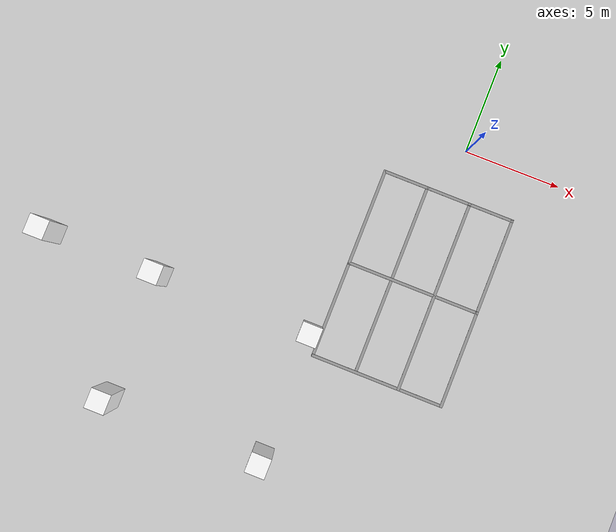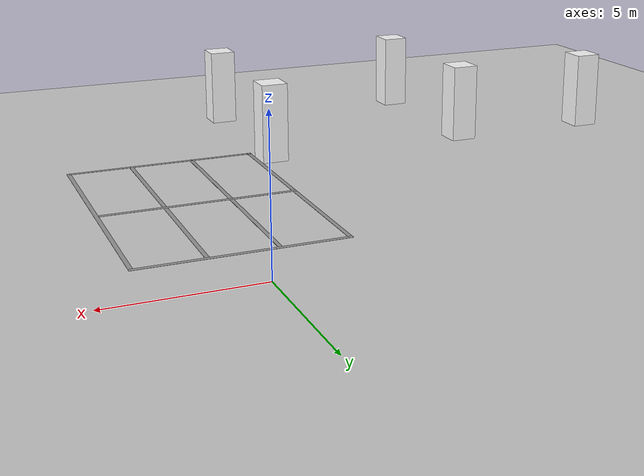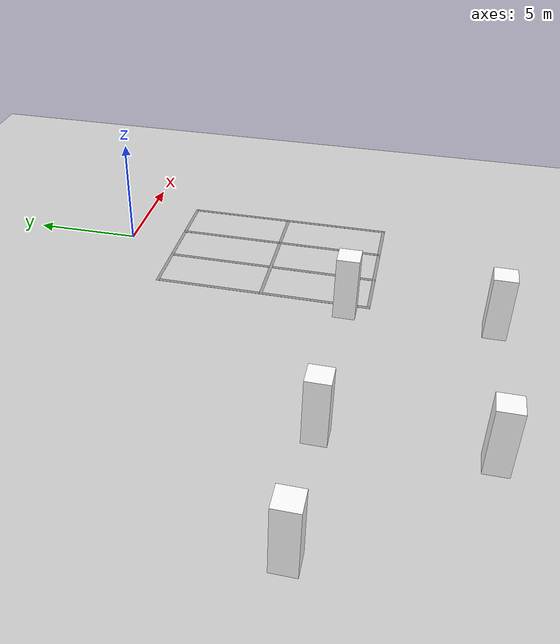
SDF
<sdf version="1.5">
 <world name="default">
  <model name="ground_plane">
   <static>true</static>
   <link name="ground_link">
    <collision name="ground_collision">
     <geometry><plane><normal>0 0 1</normal><size>100 100</size></plane></geometry>
     <surface><friction><ode><mu>100</mu><mu2>50</mu2></ode></friction></surface>
    </collision>
    <visual name="visual">
     <cast_shadows>false</cast_shadows>
     <geometry><plane><normal>0 0 1</normal><size>100 100</size></plane></geometry>
     <material>
      <script><uri>file://media/materials/scripts/gazebo.material</uri><name>Gazebo/Grey</name></script>
     </material>
    </visual>
   </link>
  </model>
  <model name="column11">
   <pose>-4.025 -11.45 1.5 0 -0 0</pose>
   <link name="link">
    <collision name="collision"><geometry><box><size>1 1 3</size></box></geometry></collision>
    <visual name="visual">
     <geometry><box><size>1 1 3</size></box></geometry>
     <material>
      <script>
       <uri>model://materials/scripts</uri>
       <uri>model://materials/textures</uri>
       <name>column/parking</name>
      </script>
      <ambient>1 1 1 1</ambient>
      <diffuse>1 1 1 1</diffuse>
      <specular>0 0 0 1</specular>
      <emissive>1 1 1 0</emissive>
      <shader type="vertex"><normal_map>__default__</normal_map></shader>
     </material>
    </visual>
   </link>
   <static>1</static>
  </model>
  <model name="column12">
   <pose>-12.075 -11.45 1.5 0 -0 0</pose>
   <link name="link">
    <collision name="collision"><geometry><box><size>1 1 3</size></box></geometry></collision>
    <visual name="visual">
     <geometry><box><size>1 1 3</size></box></geometry>
     <material>
      <script>
       <uri>model://materials/scripts</uri>
       <uri>model://materials/textures</uri>
       <name>column/parking</name>
      </script>
      <ambient>1 1 1 1</ambient>
      <diffuse>1 1 1 1</diffuse>
      <specular>0 0 0 1</specular>
      <emissive>1 1 1 0</emissive>
      <shader type="vertex"><normal_map>__default__</normal_map></shader>
     </material>
    </visual>
   </link>
   <static>1</static>
  </model>
  <model name="column_s10">
   <pose>-17.875 -11.45 1.5 0 -0 0</pose>
   <link name="link">
    <collision name="collision"><geometry><box><size>1 1 3</size></box></geometry></collision>
    <visual name="visual">
     <geometry><box><size>1 1 3</size></box></geometry>
     <material>
      <script>
       <uri>model://materials/scripts</uri>
       <uri>model://materials/textures</uri>
       <name>column/parking</name>
      </script>
      <ambient>1 1 1 1</ambient>
      <diffuse>1 1 1 1</diffuse>
      <specular>0 0 0 1</specular>
      <emissive>1 1 1 0</emissive>
      <shader type="vertex"><normal_map>__default__</normal_map></shader>
     </material>
    </visual>
   </link>
   <static>1</static>
  </model>
  <model name="column_s11">
   <pose>-12.075 -17.95 1.5 0 -0 0</pose>
   <link name="link">
    <collision name="collision"><geometry><box><size>1 1 3</size></box></geometry></collision>
    <visual name="visual">
     <geometry><box><size>1 1 3</size></box></geometry>
     <material>
      <script>
       <uri>model://materials/scripts</uri>
       <uri>model://materials/textures</uri>
       <name>column/parking</name>
      </script>
      <ambient>1 1 1 1</ambient>
      <diffuse>1 1 1 1</diffuse>
      <specular>0 0 0 1</specular>
      <emissive>1 1 1 0</emissive>
      <shader type="vertex"><normal_map>__default__</normal_map></shader>
     </material>
    </visual>
   </link>
   <static>1</static>
  </model>
  <model name="column_s12">
   <pose>-4.025 -17.95 1.5 0 -0 0</pose>
   <link name="link">
    <collision name="collision"><geometry><box><size>1 1 3</size></box></geometry></collision>
    <visual name="visual">
     <geometry><box><size>1 1 3</size></box></geometry>
     <material>
      <script>
       <uri>model://materials/scripts</uri>
       <uri>model://materials/textures</uri>
       <name>column/parking</name>
      </script>
      <ambient>1 1 1 1</ambient>
      <diffuse>1 1 1 1</diffuse>
      <specular>0 0 0 1</specular>
      <emissive>1 1 1 0</emissive>
      <shader type="vertex"><normal_map>__default__</normal_map></shader>
     </material>
    </visual>
   </link>
   <static>1</static>
  </model>
  <model name="parking_line5">
   <pose>-7.5e-05 -6.26258 0 0 -0 0</pose>
   <link name="Wall_51">
    <collision name="Wall_51_Collision">
     <geometry><box><size>10.15 0.15 0.005</size></box></geometry>
     <pose>0 0 0.0025 0 -0 0</pose>
    </collision>
    <visual name="Wall_51_Visual">
     <pose>0 0 0.0025 0 -0 0</pose>
     <geometry><box><size>10.15 0.15 0.005</size></box></geometry>
     <material>
      <script><uri>file://media/materials/scripts/gazebo.material</uri><name>Gazebo/Grey</name></script>
      <ambient>1 1 1 1</ambient>
     </material>
     <meta><layer>0</layer></meta>
    </visual>
    <pose>1.15007 -1.18742 0 0 -0 1.5708</pose>
   </link>
   <link name="Wall_52">
    <collision name="Wall_52_Collision">
     <geometry><box><size>7.05 0.15 0.005</size></box></geometry>
     <pose>0 0 0.0025 0 -0 0</pose>
    </collision>
    <visual name="Wall_52_Visual">
     <pose>0 0 0.0025 0 -0 0</pose>
     <geometry><box><size>7.05 0.15 0.005</size></box></geometry>
     <material>
      <script><uri>file://media/materials/scripts/gazebo.material</uri><name>Gazebo/Grey</name></script>
      <ambient>1 1 1 1</ambient>
     </material>
     <meta><layer>0</layer></meta>
    </visual>
    <pose>7.5e-05 3.81257 0 0 -0 0</pose>
   </link>
   <link name="Wall_53">
    <collision name="Wall_53_Collision">
     <geometry><box><size>10.15 0.15 0.005</size></box></geometry>
     <pose>0 0 0.0025 0 -0 0</pose>
    </collision>
    <visual name="Wall_53_Visual">
     <pose>0 0 0.0025 0 -0 0</pose>
     <geometry><box><size>10.15 0.15 0.005</size></box></geometry>
     <material>
      <script><uri>file://media/materials/scripts/gazebo.material</uri><name>Gazebo/Grey</name></script>
      <ambient>1 1 1 1</ambient>
     </material>
     <meta><layer>0</layer></meta>
    </visual>
    <pose>3.45008 -1.18742 0 0 -0 1.5708</pose>
   </link>
   <link name="Wall_54">
    <collision name="Wall_54_Collision">
     <geometry><box><size>7.03 0.15 0.005</size></box></geometry>
     <pose>0 0 0.0025 0 -0 0</pose>
    </collision>
    <visual name="Wall_54_Visual">
     <pose>0 0 0.0025 0 -0 0</pose>
     <geometry><box><size>7.03 0.15 0.005</size></box></geometry>
     <material>
      <script><uri>file://media/materials/scripts/gazebo.material</uri><name>Gazebo/Grey</name></script>
      <ambient>1 1 1 1</ambient>
     </material>
     <meta><layer>0</layer></meta>
    </visual>
    <pose>0.010075 -6.18743 0 0 -0 3.14159</pose>
   </link>
   <link name="Wall_55">
    <collision name="Wall_55_Collision">
     <geometry><box><size>10.15 0.15 0.005</size></box></geometry>
     <pose>0 0 0.0025 0 -0 0</pose>
    </collision>
    <visual name="Wall_55_Visual">
     <pose>0 0 0.0025 0 -0 0</pose>
     <geometry><box><size>10.15 0.15 0.005</size></box></geometry>
     <material>
      <script><uri>file://media/materials/scripts/gazebo.material</uri><name>Gazebo/Grey</name></script>
      <ambient>1 1 1 1</ambient>
     </material>
     <meta><layer>0</layer></meta>
    </visual>
    <pose>-3.45 -1.18742 0 0 -0 -1.5708</pose>
   </link>
   <link name="Wall_56">
    <collision name="Wall_56_Collision">
     <geometry><box><size>7.05 0.15 0.005</size></box></geometry>
     <pose>0 0 0.0025 0 -0 0</pose>
    </collision>
    <visual name="Wall_56_Visual">
     <pose>0 0 0.0025 0 -0 0</pose>
     <geometry><box><size>7.05 0.15 0.005</size></box></geometry>
     <material>
      <script><uri>file://media/materials/scripts/gazebo.material</uri><name>Gazebo/Grey</name></script>
      <ambient>1 1 1 1</ambient>
     </material>
     <meta><layer>0</layer></meta>
    </visual>
    <pose>7.5e-05 -1.18742 0 0 -0 0</pose>
   </link>
   <link name="Wall_57">
    <collision name="Wall_57_Collision">
     <geometry><box><size>10.15 0.15 0.005</size></box></geometry>
     <pose>0 0 0.0025 0 -0 0</pose>
    </collision>
    <visual name="Wall_57_Visual">
     <pose>0 0 0.0025 0 -0 0</pose>
     <geometry><box><size>10.15 0.15 0.005</size></box></geometry>
     <material>
      <script><uri>file://media/materials/scripts/gazebo.material</uri><name>Gazebo/Grey</name></script>
      <ambient>1 1 1 1</ambient>
     </material>
     <meta><layer>0</layer></meta>
    </visual>
    <pose>-1.14993 -1.18742 0 0 -0 1.5708</pose>
   </link>
   <static>1</static>
  </model>
 </world>
</sdf>
